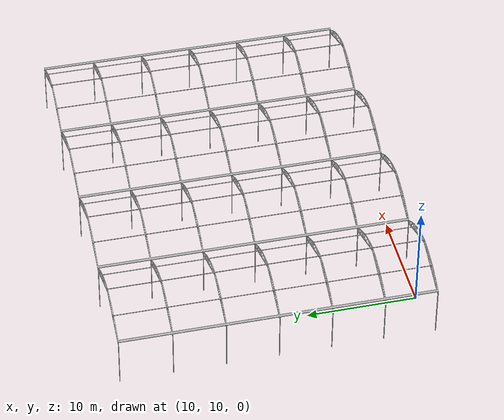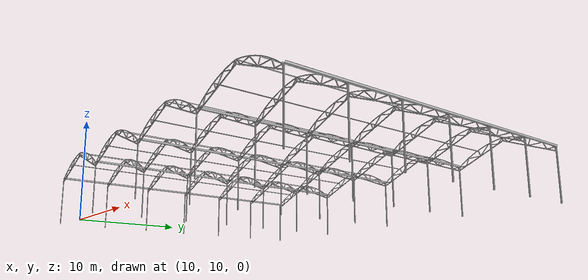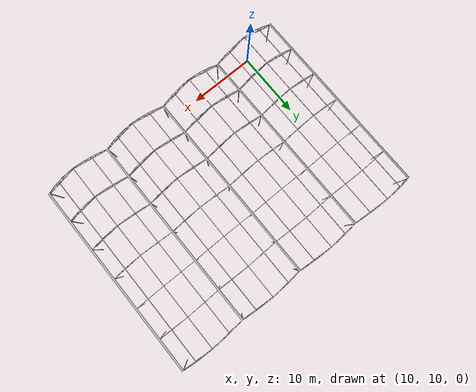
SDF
<?xml version="1.0" ?>
<sdf version="1.6">
  <model name="greenhouse">
    <static>true</static>
    <link name="link">
      <collision name="collision">
        <pose>0 0 0 0 -0 0</pose>
        <geometry>
          <mesh>
            <scale>0.05 0.05 0.05</scale>
            <uri>model://greenhouse/meshes/greenhouse.dae</uri>
          </mesh>
        </geometry>
      </collision>
      <visual name="visual">
        <pose>0 0 0 0 -0 0</pose>
        <geometry>
          <mesh>
            <scale>0.03 0.03 0.03</scale>
            <uri>model://greenhouse/meshes/greenhouse.dae</uri>
          </mesh>
        </geometry>
      </visual>
    </link>
  </model>
</sdf>
